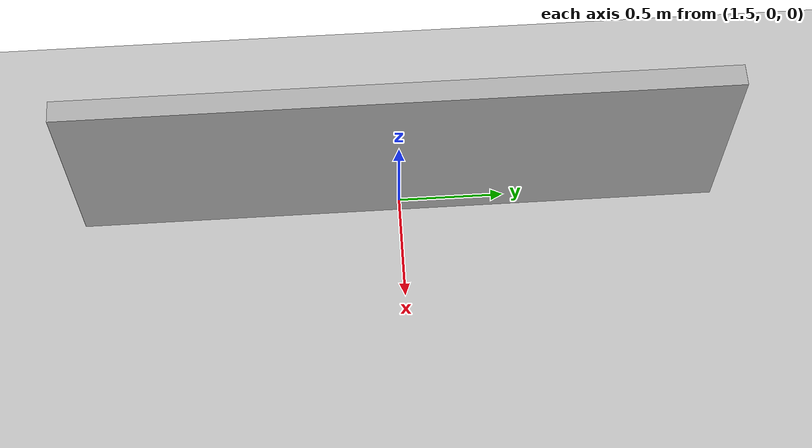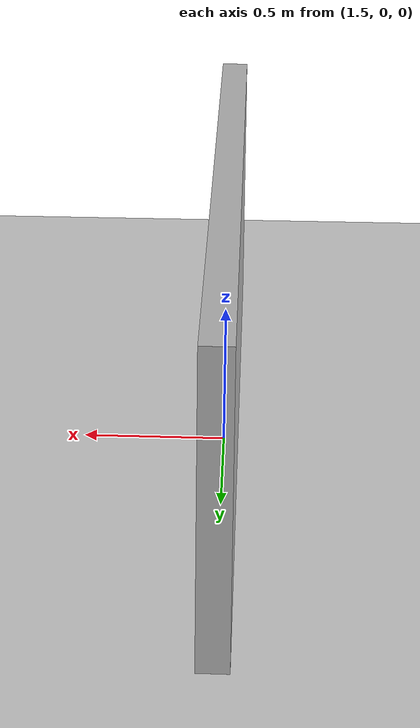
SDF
<?xml version="1.0"?>
<sdf version="1.6">
  <world name="my_world">
    <gravity>0 0 -9.8</gravity>
    <physics name="ode" type="ode"><max_step_size>0.001</max_step_size><real_time_update_rate>1000</real_time_update_rate></physics>
    <light name="sun" type="directional"><pose>0 0 10 0 0 0</pose><diffuse>0.8 0.8 0.8 1</diffuse><specular>0.2 0.2 0.2 1</specular><direction>-0.5 0.1 -0.9</direction></light>
    <model name="ground_plane"><static>true</static><link name="ground">
      <collision name="collision"><geometry><plane><normal>0 0 1</normal><size>20 20</size></plane></geometry><surface><friction><ode><mu>1</mu><mu2>1</mu2></ode></friction></surface></collision>
      <visual name="visual"><geometry><plane><normal>0 0 1</normal><size>20 20</size></plane></geometry></visual>
    </link></model>
    <model name="wall_1"><static>true</static><pose>1.5 0 0.5 0 0 0</pose><link name="wall">
      <collision name="collision"><geometry><box><size>0.1 3 1</size></box></geometry></collision>
      <visual name="visual"><geometry><box><size>0.1 3 1</size></box></geometry></visual>
    </link></model>
  </world>
</sdf>
